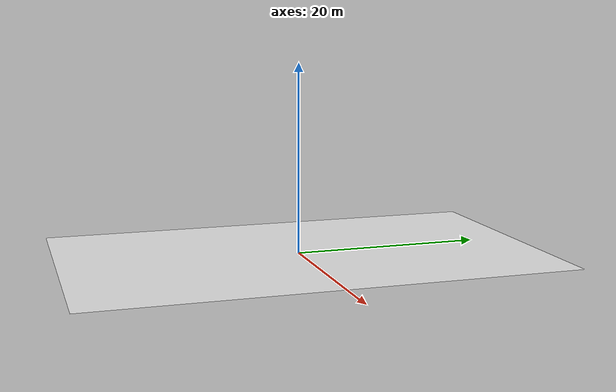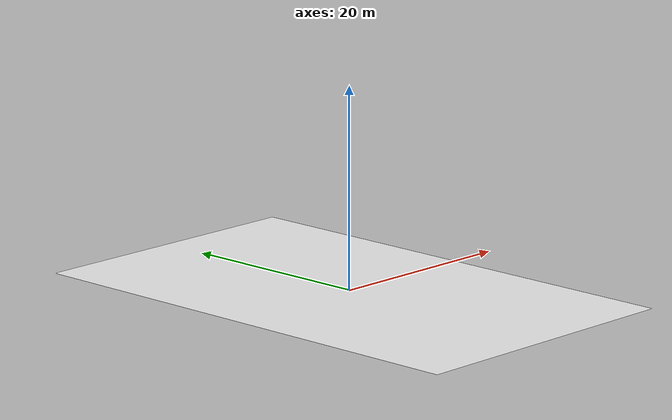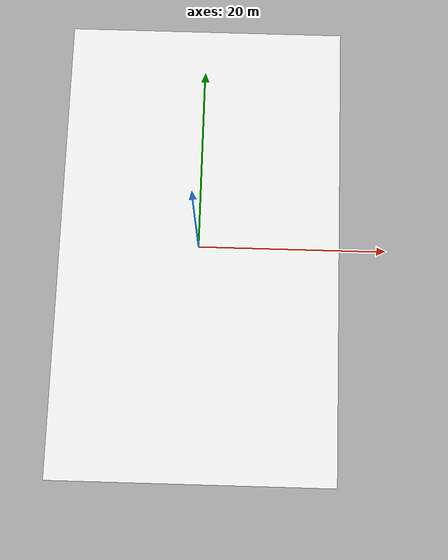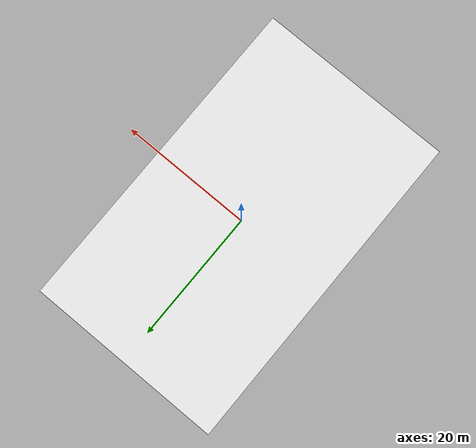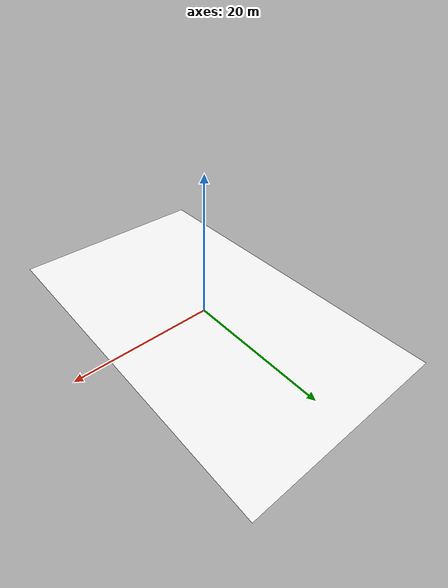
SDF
<?xml version="1.0"?>
<sdf version="1.7">
  <model name="line_track">
    <static>true</static>
    <link name="track_link">
      <visual name="track_visual">
        <cast_shadows>false</cast_shadows>
        <geometry>
          <mesh>
            <uri>meshes/track_plane.obj</uri>
            <scale>1 1 1</scale>
          </mesh>
        </geometry>
        <material>
          <ambient>1 1 1 1</ambient>
          <diffuse>1 1 1 1</diffuse>
          <specular>0 0 0 1</specular>
          <pbr>
            <metal>
              <albedo_map>materials/textures/track_yellow.png</albedo_map>
              <metalness>0.0</metalness>
              <roughness>0.9</roughness>
            </metal>
          </pbr>
        </material>
        <transparency>0.0</transparency>
      </visual>
    </link>
  </model>
</sdf>
